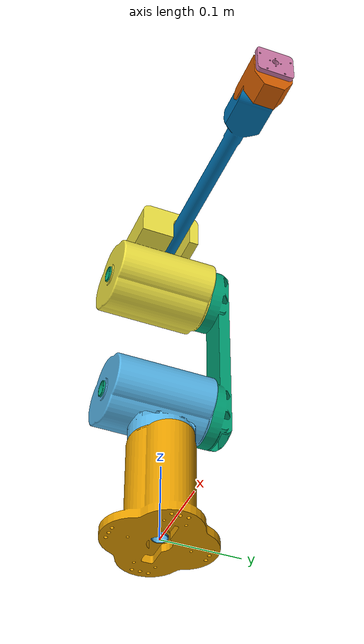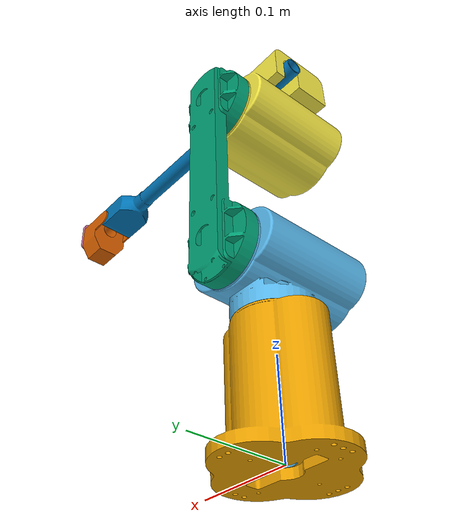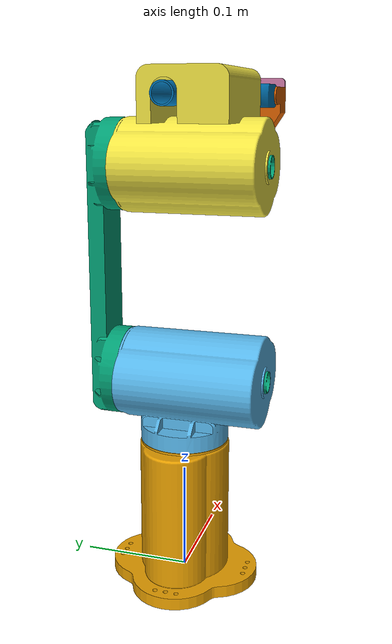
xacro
<?xml version="1.0"?>
<robot xmlns:xacro="http://ros.org/wiki/xacro" name="CPRMover6">

<!-- URDF file for the Commonplace Robotics Mover4 robot arm -->
<!-- Version 1.1 from Oct. 04th, 2016. -->

  <link name="base_link">
    <visual>
	  <origin rpy="0 0 0" xyz="0 0 0"/>
      <geometry>
          <mesh filename="package://cpr_ros2/urdf/CPRMover6/Joint0.dae"  scale="0.001 0.001 0.001"/>
        </geometry>
    </visual>
    <collision>
      <origin xyz="0 0 0" rpy="0 0 0" />
      <geometry>
          <mesh filename="package://cpr_ros2/urdf/CPRMover6/Joint0Coll.dae" scale="0.001 0.001 0.001"/>
        </geometry>
    </collision>
  </link>
  <link name="link1">
    <visual>
	  <origin rpy="0 0 0" xyz="0 0 0"/>
      <geometry>
          <mesh filename="package://cpr_ros2/urdf/CPRMover6/Joint1.dae"  scale="0.001 0.001 0.001"/>
        </geometry>
    </visual>
    <collision>
      <origin xyz="0 0 0" rpy="0 0 0" />
      <geometry>
          <mesh filename="package://cpr_ros2/urdf/CPRMover6/Joint1Coll.dae" scale="0.001 0.001 0.001"/>
        </geometry>
    </collision>
  </link>
  <link name="link2">
    <visual>
	  <origin rpy="0 0 0" xyz="0 0 0"/>
      <geometry>
          <mesh filename="package://cpr_ros2/urdf/CPRMover6/Joint2.dae"  scale="0.001 0.001 0.001"/>
        </geometry>
    </visual>
    <collision>
      <origin xyz="0 0 0" rpy="0 0 0" />
      <geometry>
          <mesh filename="package://cpr_ros2/urdf/CPRMover6/Joint2Coll.dae" scale="0.001 0.001 0.001"/>
        </geometry>
    </collision>
  </link>
  <link name="link3">
    <visual>
	  <origin rpy="0 0 0" xyz="0 0 0"/>
      <geometry>
          <mesh filename="package://cpr_ros2/urdf/CPRMover6/Joint3.dae"  scale="0.001 0.001 0.001"/>
        </geometry>
    </visual>
    <collision>
      <origin xyz="0 0 0" rpy="0 0 0" />
      <geometry>
          <mesh filename="package://cpr_ros2/urdf/CPRMover6/Joint3Coll.dae" scale="0.001 0.001 0.001"/>
        </geometry>
    </collision>
  </link>
  <link name="link4">
    <visual>
	  <origin rpy="0 0 0" xyz="0 0 0"/>
      <geometry>
          <mesh filename="package://cpr_ros2/urdf/CPRMover6/Joint4.dae"  scale="0.001 0.001 0.001"/>
        </geometry>
    </visual>
    <collision>
      <origin xyz="0 0 0" rpy="0 0 0" />
      <geometry>
          <mesh filename="package://cpr_ros2/urdf/CPRMover6/Joint4Coll.dae" scale="0.001 0.001 0.001"/>
        </geometry>
    </collision>
  </link>
  <link name="link5">
    <visual>
	  <origin rpy="0 0 0" xyz="0 0 0"/>
      <geometry>
          <mesh filename="package://cpr_ros2/urdf/CPRMover6/Joint5.dae"  scale="0.001 0.001 0.001"/>
        </geometry>
    </visual>
    <collision>
      <origin xyz="0 0 0" rpy="0 0 0" />
      <geometry>
          <mesh filename="package://cpr_ros2/urdf/CPRMover6/Joint5Coll.dae" scale="0.001 0.001 0.001"/>
        </geometry>
    </collision>
  </link>
  <link name="link6">
    <visual>
	  <origin rpy="0 0 0" xyz="0 0 0"/>
      <geometry>
          <mesh filename="package://cpr_ros2/urdf/CPRMover6/Joint6.dae"  scale="0.001 0.001 0.001"/>
        </geometry>
    </visual>
    <collision>
      <origin xyz="0 0 0" rpy="0 0 0" />
      <geometry>
          <mesh filename="package://cpr_ros2/urdf/CPRMover6/Joint6Coll.dae" scale="0.001 0.001 0.001"/>
        </geometry>
    </collision>
  </link>
  <joint name="joint1" type="continuous">
    <axis xyz="0 0 1"/>
    <parent link="base_link"/>
    <child link="link1"/>
    <origin rpy="0 0 0" xyz="0 0 0.130"/>
    <limit effort="100" velocity="30"/>
    <joint_properties damping="0.0" friction="0.0"/>
  </joint>
  <joint name="joint2" type="continuous">
    <axis xyz="0 1 0"/>
    <parent link="link1"/>
    <child link="link2"/>
    <origin rpy="0 0 0" xyz="0 0 0.0625"/>
    <limit effort="100" velocity="30"/>
    <joint_properties damping="0.0" friction="0.0"/>
  </joint>
 <joint name="joint3" type="continuous">
    <axis xyz="0 1 0"/>
    <parent link="link2"/>
    <child link="link3"/>
    <origin rpy="0 1.57079632679 0" xyz="0 0 0.190"/>
    <limit effort="100" velocity="30"/>
    <joint_properties damping="0.0" friction="0.0"/>
  </joint>
 <joint name="joint4" type="continuous">
    <axis xyz="0 0 1"/>
    <parent link="link3"/>
    <child link="link4"/>
    <origin rpy="0 0 0" xyz="-0.06 0 0"/>
    <limit effort="100" velocity="30"/>
    <joint_properties damping="0.0" friction="0.0"/>
  </joint>
 <joint name="joint5" type="continuous">
    <axis xyz="0 1 0"/>
    <parent link="link4"/>
    <child link="link5"/>
    <origin rpy="0 0 0" xyz="0 0 0.290"/>
    <limit effort="100" velocity="30"/>
    <joint_properties damping="0.0" friction="0.0"/>
  </joint>
 <joint name="joint6" type="continuous">
    <axis xyz="0 0 1"/>
    <parent link="link5"/>
    <child link="link6"/>
    <origin rpy="0 0 0" xyz="0 0 0.055"/>
    <limit effort="100" velocity="30"/>
    <joint_properties damping="0.0" friction="0.0"/>
  </joint>
</robot>
